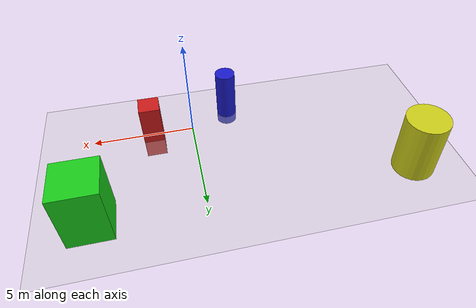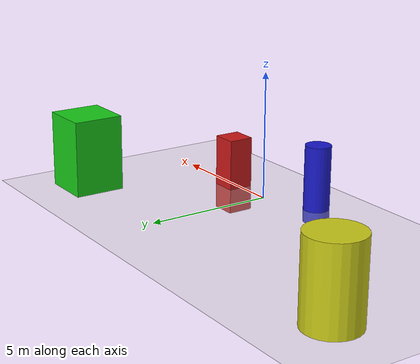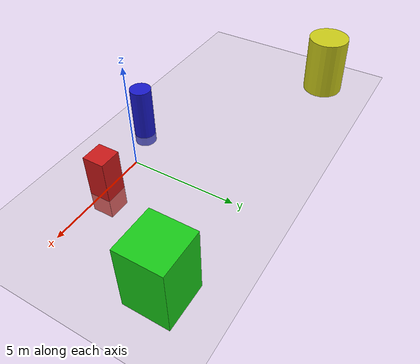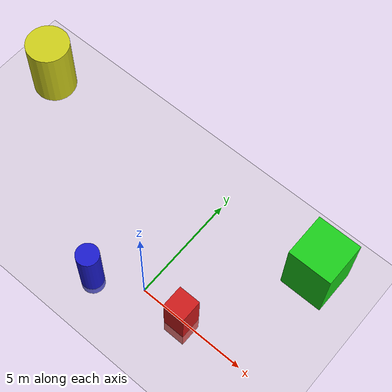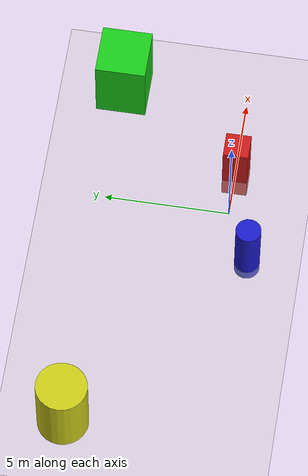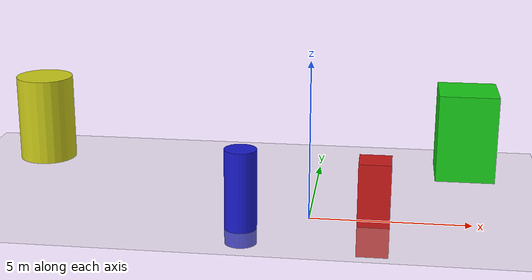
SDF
<sdf version="1.6">
 <world name="empty_with_obstacles">
  <include><uri>model://sun</uri></include>
  <include><uri>model://ground_plane</uri></include>
  <model name="red_box">
   <pose>2 0 0.5 0 0 0</pose>
   <static>true</static>
   <link name="link">
    <collision name="collision"><geometry><box><size>1 1 3</size></box></geometry></collision>
    <visual name="visual">
     <geometry><box><size>1 1 3</size></box></geometry>
     <material><ambient>0.8 0.1 0.1 1</ambient></material>
    </visual>
   </link>
  </model>
  <model name="blue_pillar">
   <pose>-2 -1 1 0 0 0</pose>
   <static>true</static>
   <link name="link">
    <collision name="collision">
     <geometry><cylinder><radius>0.5</radius><length>3</length></cylinder></geometry>
    </collision>
    <visual name="visual">
     <geometry><cylinder><radius>0.5</radius><length>3</length></cylinder></geometry>
     <material><ambient>0.1 0.1 0.8 1</ambient></material>
    </visual>
   </link>
  </model>
  <model name="green_box">
   <pose>5 5 1.5 0 0 0</pose>
   <static>true</static>
   <link name="link">
    <collision name="collision"><geometry><box><size>2 2 3</size></box></geometry></collision>
    <visual name="visual">
     <geometry><box><size>2 2 3</size></box></geometry>
     <material><ambient>0.1 0.8 0.1 1</ambient></material>
    </visual>
   </link>
  </model>
  <model name="yellow_cylinder">
   <pose>-10 5 1.5 0 0 0</pose>
   <static>true</static>
   <link name="link">
    <collision name="collision">
     <geometry><cylinder><radius>1.0</radius><length>3</length></cylinder></geometry>
    </collision>
    <visual name="visual">
     <geometry><cylinder><radius>1.0</radius><length>3</length></cylinder></geometry>
     <material><ambient>0.8 0.8 0.1 1</ambient></material>
    </visual>
   </link>
  </model>
  <gravity>0 0 -9.81</gravity>
  <physics type="ode">
   <real_time_update_rate>1000</real_time_update_rate>
   <max_step_size>0.001</max_step_size>
  </physics>
 </world>
</sdf>
